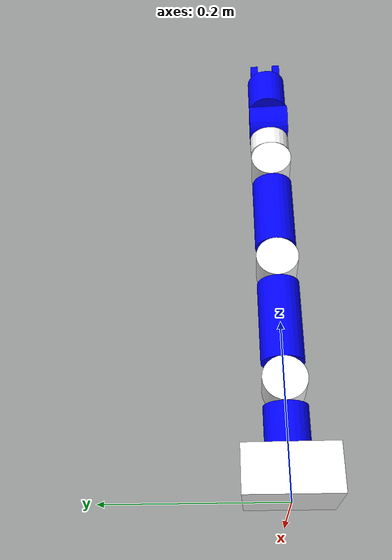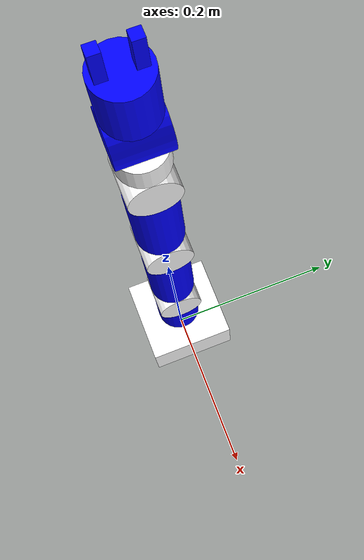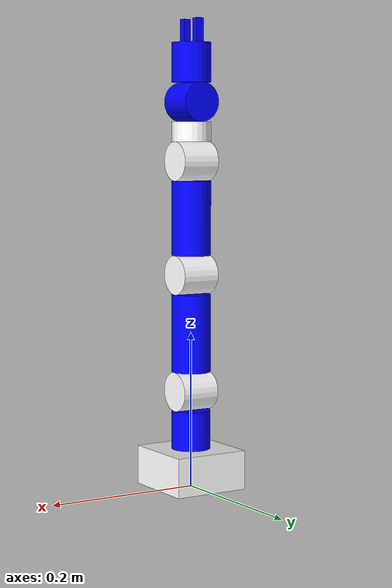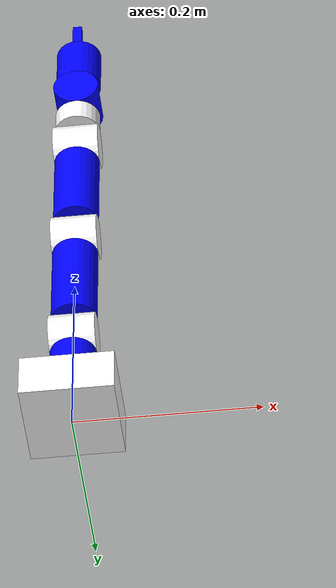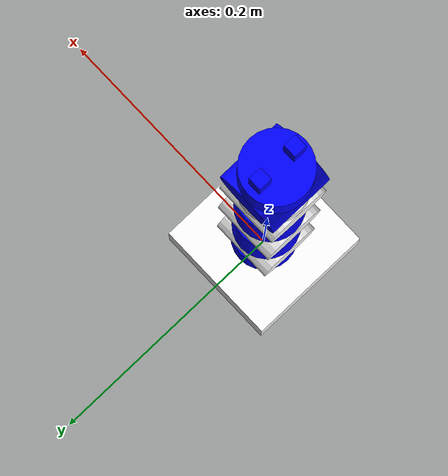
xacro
<?xml version="1.0"?>
<!-- Primeiro abra o terminal -->
<!-- roscore -->
<!-- Primeiro abra outro terminal -->
<!--cd /opt/robotic_arms_ws/src -->
<!--roslaunch urdf_tutorial display.launch model:="pioneer7dof/urdf/pioneer_7dof.urdf"-->
<robot name="robotic_arm">
    <link name="world"/>
    <!--ONE-->
        <link name="base_link">
            <visual>
                <geometry>
                    <box size="0.1 0.1 0.05"/>
                </geometry>
                <material name = "White">
                    <color rgba ="1.0 1.0 1.0 1.0"/>
                </material>
                <origin xyz=" 0.0 0.0 0.025" rpy ="0.0 0.0 0.0"/>
            </visual>
            <collision>
                <geometry>
                    <box size="0.1 0.1 0.05"/>
                </geometry>
                 <origin xyz=" 0.0 0.0 0.025" rpy ="0.0 0.0 0.0"/>
            </collision>
        </link>
        <joint name="fixed_base" type = "fixed">
        <parent link ="world"/>
        <child link ="base_link"/>
        </joint>

    <!--ONE LINK-->
        <link name="One">
            <visual>
                <geometry>
                    <cylinder radius="0.025" length ="0.05"/>
                </geometry>
                <material name = "Blue">
                    <color rgba ="0.0 0.0 1.0 1.0"/>
                </material>
                <origin xyz=" 0.0 -0.05 0.0" rpy ="1.5708 0.0 0.0"/>
                <!--Its the relation between joind and the body in distance-->>
            </visual>
            <collision>
                <geometry>
                    <cylinder radius="0.025" length ="0.05"/>
                </geometry>
               <origin xyz=" 0.0 -0.05 0.0" rpy ="1.5708 0.0 0.0"/>
            </collision>
        </link>
        <joint name="One_joint" type = "revolute">
        <limit lower="-2.6179" upper="2.6179" effort="100.0" velocity="1.0"/>
        <!--(pi - pi/12 = 2.8798)-->
            <parent link ="base_link"/>
            <child link ="One"/>
            <axis xyz = "0.0 1.0 0.0"/>
            <origin xyz = "0.0 0.0 0.125" rpy = "1.5708 0.0 1.5708"/>
        </joint>

    <!--Two LINK-->
        <link name="Two">
            <visual>
                <geometry>
                    <cylinder radius="0.025" length ="0.05"/>
                </geometry>
                <material name = "White">
                    <color rgba ="1.0 1.0 1.0 1.0"/>
                </material>
                <origin xyz="0.0 0.0 0.0" rpy ="1.5708  0.0 0.0"/>
                <!--Its the relation between joind and the body in distance-->>
            </visual>
            <collision>
                <geometry>
                    <cylinder radius="0.025" length ="0.05"/>
                </geometry>
               <origin xyz="0.0 0.0 0.0" rpy ="1.5708  0.0 0.0"/>
            </collision>
        </link>
        <joint name="Two_joint" type = "revolute">
        <limit lower="-1.5358" upper="1.5358" effort="100.0" velocity="1.0"/>
        <!--(pi/2 = 1.5708)-->
            <parent link ="One"/>
            <child link ="Two"/>
            <axis xyz = "0.0 -1.0 0.0"/>
            <origin xyz = "0.0 0.0 0.0" rpy = "-1.5708 0.0 0.0"/>
            <!--This is relation between parent and child joint-->>
        </joint>

    <!--Three LINK-->
        <link name="Three">
            <visual>
                <geometry>
                    <cylinder radius="0.025" length ="0.1"/>
                </geometry>
                <material name = "Blue">
                    <color rgba ="0.0 0.0 1.0 1.0"/>
                </material>
                <origin xyz=" 0.0 -0.075 0.0" rpy ="1.5708 0.0 0.0"/>
                <!--Its the relation between joind and the body in distance-->>
            </visual>
            <collision>
                <geometry>
                    <cylinder radius="0.025" length ="0.1"/>
                </geometry>
                <origin xyz=" 0.0 -0.075 0.0" rpy ="1.5708 0.0 0.0"/>
            </collision>
        </link>
        <joint name="Three_joint" type = "revolute">
        <limit lower="-2.6179" upper="2.6179" effort="100.0" velocity="1.0"/>
        <!--(pi - pi/12 = 2.8798)-->
            <parent link ="Two"/>
            <child link ="Three"/>
            <axis xyz = "0.0 1.0 0.0"/>
            <origin xyz = "0.0 0.0 0.15" rpy = "1.5708 0.0 0.0"/>
            <!--This is relation between parent and child joint-->>
        </joint>

   <!--Four LINK-->
        <link name="Four">
            <visual>
                <geometry>
                    <cylinder radius="0.025" length ="0.05"/>
                </geometry>
                <material name = "White">
                    <color rgba ="1.0 1.0 1.0 1.0"/>
                </material>
                <origin xyz="0.0 0.0 0.0" rpy ="1.5708  0.0 0.0"/>
                <!--Its the relation between joind and the body in distance-->>
            </visual>
            <collision>
                <geometry>
                    <cylinder radius="0.025" length ="0.05"/>
                </geometry>
                <origin xyz="0.0 0.0 0.0" rpy ="1.5708  0.0 0.0"/>
            </collision>
        </link>
        <joint name="Four_joint" type = "revolute">
        <limit lower="-1.6144" upper="1.6144" effort="100.0" velocity="1.0"/>
        <!--(pi - pi/12 = 2.8798)-->
            <parent link ="Three"/>
            <child link ="Four"/>
            <axis xyz = "0.0 -1.0 0.0"/>
            <origin xyz = "0.0 0.0 0.0" rpy = "-1.5708 0.0 0.0"/>
            <!--This is relation between parent and child joint-->>
        </joint>

   <!--Five LINK-->
        <link name="Five">
            <visual>
                <geometry>
                    <cylinder radius="0.025" length ="0.095"/>
                </geometry>
                <material name = "Blue">
                    <color rgba ="0.0 0.0 1.0 1.0"/>
                </material>
                <origin xyz=" 0.0 -0.0725 0.0" rpy ="1.5708 0.0 0.0"/>
                <!--Its the relation between joind and the body in distance-->>
            </visual>
            <collision>
                <geometry>
                    <cylinder radius="0.025" length ="0.095"/>
                </geometry>
                <origin xyz=" 0.0 -0.0725 0.0" rpy ="1.5708 0.0 0.0"/>
            </collision>
        </link>
        <joint name="Five_joint" type = "revolute">
        <limit lower="-2.6179" upper="2.6179" effort="100.0" velocity="1.0"/>
        <!--(pi - pi/12 = 2.8798)-->
            <parent link ="Four"/>
            <child link ="Five"/>
            <axis xyz = "0.0 1.0 0.0"/>
            <origin xyz = "0.0 0.0 0.145" rpy = "1.5708 0.0 0.0"/>
            <!--This is relation between parent and child joint-->>
        </joint>

    <!--Six-->
         <link name="Six">
            <visual>
                <geometry>
                    <cylinder radius="0.025" length ="0.05"/>
                </geometry>
                <material name = "White">
                    <color rgba ="1.0 1.0 1.0 1.0"/>
                </material>
                <origin xyz="0.0 0.0 0.0" rpy ="0.0 0.0 0.0"/>
                <!--Its the relation between joind and the body in distance-->>
            </visual>
            <collision>
                <geometry>
                    <cylinder radius="0.025" length ="0.05"/>
                </geometry>
                <origin xyz="0.0 0.0 0.0" rpy ="0.0 0.0 0.0"/>
            </collision>
        </link>

        <joint name="Six_joint" type = "revolute">
        <limit lower="-1.8413" upper="1.8413" effort="100.0" velocity="1.0"/>
        <!--(pi - pi/12 = 2.8798)-->
            <parent link ="Five"/>
            <child link ="Six"/>
            <axis xyz = "0.0 0.0 1.0"/>
            <origin xyz = "0.0 0.0 0.0" rpy = "0.0 0.0 0.0"/>
        </joint>

    <!--Aux-->
         <link name="Aux">
            <visual>
                <geometry>
                    <cylinder radius="0.025" length ="0.025"/>
                </geometry>
                <material name = "White">
                    <color rgba ="1.0 1.0 1.0 1.0"/>
                </material>
                <origin xyz="0.0 -0.0125 0.0" rpy ="-1.5708 0.0 0.0"/>
                <!--Its the relation between joind and the body in distance-->>
            </visual>
            <collision>
                <geometry>
                    <cylinder radius="0.025" length ="0.025"/>
                </geometry>
                <origin xyz="0.0 -0.0125 0.0" rpy ="-1.5708 0.0 0.0"/>
            </collision>
        </link>

        <joint name="Aux_joint" type = "fixed">
            <parent link ="Six"/>
            <child link ="Aux"/>
            <axis xyz = "0.0 0.0 1.0"/>
            <origin xyz = "0.0 0.05 0.0" rpy = "0.0 0.0 0.0"/>
        </joint>

    <!--Seven LINK-->
        <link name="Seven">
            <visual>
                <geometry>
                    <cylinder radius="0.025" length ="0.05"/>
                </geometry>
                <material name = "Blue">
                    <color rgba ="0.0 0.0 1.0 1.0"/>
                </material>
                <origin xyz=" 0.0 0.0 0.0" rpy ="1.5708 0.0 0.0"/>
                <!--Its the relation between joind and the body in distance-->>
            </visual>
            <collision>
                <geometry>
                    <cylinder radius="0.025" length ="0.05"/>
                </geometry>
                <origin xyz="0.0 0.0 0.0" rpy ="1.5708 0.0 0.0"/>
            </collision>
        </link>
        <joint name="Seven_joint" type = "revolute">
        <limit lower="-1.7889" upper="1.7889" effort="100.0" velocity="1.0"/>
        <!--(pi - pi/12 = 2.8798)-->
            <parent link ="Aux"/>
            <child link ="Seven"/>
            <axis xyz = "0.0 1.0 0.0"/>
            <origin xyz = "0.0 0.025 0.0" rpy = "1.5708  1.5708  0.0"/>
            <!--This is relation between parent and child joint-->>
        </joint>

    <!-- Gripper_BASE LINK-->
    <link name="Gripper_Base">
            <visual>
                <geometry>
                    <cylinder radius="0.025" length="0.05"/>
                </geometry>
                <material name = "Blue">
                    <color rgba ="0.0 0.0 1.0 1.0"/>
                </material>
                <origin xyz="0.0 0.0 -0.025" rpy="0.0 0.0 0.0"/>
                <!--Its the relation between joint and the body in distance-->
            </visual>
            <collision>
                <geometry>
                    <cylinder radius="0.025" length="0.05"/>
                </geometry>
                <origin xyz="0.0 0.0 -0.025" rpy="0.0 0.0 0.0"/>
            </collision>
    </link>
    <joint name="Gripper_Base_joint" type="fixed">
        <parent link="Seven"/>
        <child link="Gripper_Base"/>
        <axis xyz="0.0 0.0 1.0"/>
        <origin xyz="0.0 0 -0.075" rpy="0.0 3.1416 0.0 "/>
        <!--This origin is relation between parent and child joint-->
    </joint>

    <!-- Left_finger LINK-->
    <link name="L_F">
            <visual>
                <geometry>
                    <box size="0.01 0.01 0.03"/>
                </geometry>
                <material name = "Blue">
                    <color rgba ="0.0 0.0 1.0 1.0"/>
                </material>
                <origin xyz="0.0 0.0 0.015" rpy="0.0 0.0 0.0"/>
                <!--Its the relation between joint and the body in distance-->
            </visual>
            <collision>
                <geometry>
                    <box size="0.01 0.01 0.03"/>
                </geometry>
                <origin xyz="0.0 0.0 0.015" rpy="0.0 0.0 0.0"/>
            </collision>
    </link>

    <joint name="L_F_joint" type="prismatic">
        <limit lower="-0.01" upper="0.01" effort="100.0" velocity="1.0"/>
        <parent link="Gripper_Base"/>
        <child link="L_F"/>
        <axis xyz="0.0 1 0"/>
        <origin xyz="0.0 0.015 0.0" />
        <!--This origin is relation between parent and child joint-->

    </joint>

    <!-- Right Finger LINK-->
    <link name="R_F">
            <visual>
                <geometry>
                    <box size="0.01 0.01 0.03"/>
                </geometry>
                <material name = "Blue">
                    <color rgba ="0.0 0.0 1.0 1.0"/>
                </material>
                <!--Its the relation between joint and the body in distance-->
            <origin xyz="0.0 0.0 0.015" rpy="0.0 0.0 0.0"/>
            </visual>
            <collision>
                <geometry>
                    <box size="0.01 0.01 0.03"/>
                </geometry>
                <origin xyz="0.0 0.0 0.015" rpy="0.0 0.0 0.0"/>
            </collision>
    </link>

    <joint name="R_F_joint" type="prismatic">
        <limit lower="0.01" upper="-0.01" effort="100.0" velocity="1.0"/>
        <parent link="Gripper_Base"/>
        <child link="R_F"/>
        <axis xyz="0.0 1 0"/>
        <origin xyz="0.0 -0.015 0.0" />
        <!--This origin is relation between parent and child joint-->
    </joint>
</robot>
